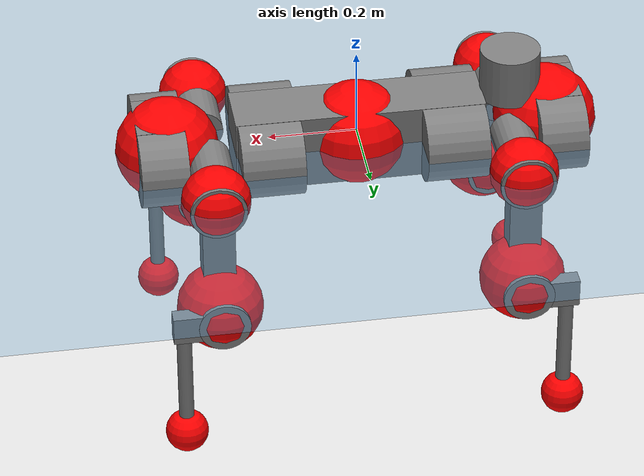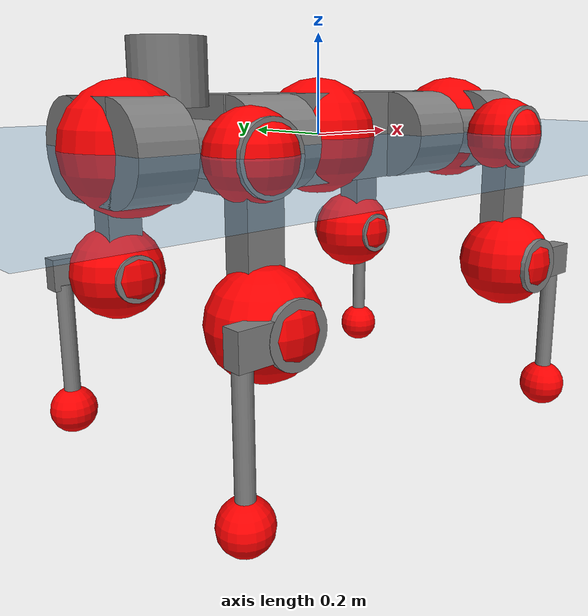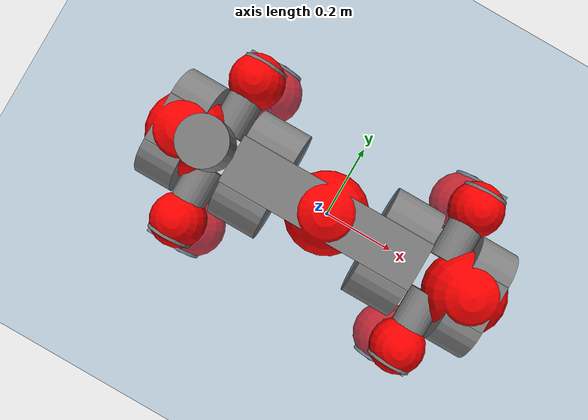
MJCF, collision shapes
<mujoco model="anymal_c">
  <compiler angle="radian" assetdir="assets" balanceinertia="true" inertiafromgeom="false"/>

  <option timestep="0.005" density="1.2" viscosity="2e-05"/>

  <size nkey="1"/>

  <visual>
    <quality shadowsize="8192"/>
    <map shadowclip="0.5"/>
  </visual>

  <default>
    <default class="/">
      <material specular="0" shininess="0.25"/>
      <geom contype="0" conaffinity="0" group="1" solref="-1000 -80"/>
      <site size="0.01 0.005 0.005" group="5"/>
      <general forcelimited="true" forcerange="-80 80" biastype="affine" gainprm="80" biasprm="0 -80 -2"/>
      <default class="anymal_c">
        <joint armature="0.01" damping="0.01" frictionloss="0.1"/>
        <default class="visual">
          <geom type="mesh" group="2"/>
          <default class="visual_zflip"/>
        </default>
        <default class="collision">
          <geom type="cylinder" group="3"/>
          <default class="foot">
            <geom size="0.03 0 0" type="sphere" condim="6" priority="1" friction="0.8 0.02 0.01" solimp="0.015 1 0.03"/>
          </default>
        </default>
      </default>
      <default class="reward_collision_sphere">
        <geom group="5" rgba="1 0 0 1"/>
      </default>
    </default>
  </default>

  <asset>
    <texture type="skybox" colorspace="auto" name="//unnamed_texture_0" builtin="gradient" rgb1="0.95 0.95 0.95" rgb2="0.95 0.95 0.95" width="100" height="600"/>
    <texture type="2d" colorspace="auto" name="texplane" builtin="checker" rgb1="0.345 0.575 0.748" rgb2="0.345 0.575 0.748" markrgb="1 1 1" width="512" height="512"/>
    <texture type="2d" colorspace="linear" name="base" file="base.png"/>
    <texture type="2d" colorspace="linear" name="top_shell" file="top_shell.png"/>
    <texture type="2d" colorspace="linear" name="bottom_shell" file="bottom_shell.png"/>
    <texture type="2d" colorspace="linear" name="remote" file="remote.png"/>
    <texture type="2d" colorspace="linear" name="hatch" file="hatch.png"/>
    <texture type="2d" colorspace="linear" name="handle" file="handle.png"/>
    <texture type="2d" colorspace="linear" name="face" file="face.png"/>
    <texture type="2d" colorspace="linear" name="battery" file="battery.png"/>
    <texture type="2d" colorspace="linear" name="lidar_cage" file="lidar_cage.png"/>
    <texture type="2d" colorspace="linear" name="depth_camera" file="depth_camera.png"/>
    <texture type="2d" colorspace="linear" name="wide_angle_camera" file="wide_angle_camera.png"/>
    <texture type="2d" colorspace="linear" name="lidar" file="lidar.png"/>
    <texture type="2d" colorspace="linear" name="drive" file="drive.png"/>
    <texture type="2d" colorspace="linear" name="hip_l" file="hip_l.png"/>
    <texture type="2d" colorspace="linear" name="shank_l" file="shank_l.png"/>
    <texture type="2d" colorspace="linear" name="foot" file="foot.png"/>
    <texture type="2d" colorspace="linear" name="thigh" file="thigh.png"/>
    <texture type="2d" colorspace="linear" name="shank_r" file="shank_r.png"/>
    <texture type="2d" colorspace="linear" name="hip_r" file="hip_r.png"/>
    <material name="MatPlane" class="/" texture="texplane" texuniform="true" texrepeat="2 2" specular="0.9" shininess="0.5"/>
    <material name="black_plastic" class="/" rgba="0.007 0.007 0.007 1"/>
    <material name="green" class="/" rgba="0.052 0.178 0.033 1"/>
    <material name="red" class="/" rgba="0.178 0.006 0.005 1"/>
    <material name="yellow" class="/" rgba="0.178 0.119 0.006 1"/>
    <material name="lwl" class="/" rgba="0.8 0.8 0.8 1"/>
    <material name="base" class="/" texture="base"/>
    <material name="top_shell" class="/" texture="top_shell"/>
    <material name="bottom_shell" class="/" texture="bottom_shell"/>
    <material name="hip_l" class="/" texture="hip_l"/>
    <material name="thigh" class="/" texture="thigh"/>
    <material name="shank_l" class="/" texture="shank_l"/>
    <material name="foot" class="/" texture="foot"/>
    <material name="hip_r" class="/" texture="hip_r"/>
    <material name="shank" class="/" texture="shank_r"/>
    <material name="hatch" class="/" texture="hatch"/>
    <material name="remote" class="/" texture="remote"/>
    <material name="handle" class="/" texture="handle"/>
    <material name="face" class="/" texture="face"/>
    <material name="depth_camera" class="/" texture="depth_camera"/>
    <material name="wide_angle_camera" class="/" texture="wide_angle_camera"/>
    <material name="battery" class="/" texture="battery"/>
    <material name="lidar_cage" class="/" texture="lidar_cage"/>
    <material name="lidar" class="/" texture="lidar"/>
    <material name="drive" class="/" texture="drive"/>
    <mesh name="base_0" class="/" file="base_0.obj"/>
    <mesh name="base_1" class="/" file="base_1.obj"/>
    <mesh name="base_2" class="/" file="base_2.obj"/>
    <mesh name="base_3" class="/" file="base_3.obj"/>
    <mesh name="base_4" class="/" file="base_4.obj"/>
    <mesh name="base_5" class="/" file="base_5.obj"/>
    <mesh name="top_shell" class="/" file="top_shell.obj"/>
    <mesh name="bottom_shell" class="/" file="bottom_shell.obj"/>
    <mesh name="remote" class="/" file="remote.obj"/>
    <mesh name="handle" class="/" file="handle.obj"/>
    <mesh name="face" class="/" file="face.obj"/>
    <mesh name="wide_angle_camera" class="/" file="wide_angle_camera.obj"/>
    <mesh name="depth_camera" class="/" file="depth_camera.obj"/>
    <mesh name="battery" class="/" file="battery.obj"/>
    <mesh name="lidar_cage" class="/" file="lidar_cage.obj"/>
    <mesh name="lidar" class="/" file="lidar.obj"/>
    <mesh name="drive" class="/" file="drive.obj"/>
    <mesh name="hip_l" class="/" file="hip_l.obj"/>
    <mesh name="thigh" class="/" file="thigh.obj"/>
    <mesh name="shank_l" class="/" file="shank_l.obj"/>
    <mesh name="foot" class="/" file="foot.obj"/>
    <mesh name="hip_r" class="/" file="hip_r.obj"/>
    <mesh name="hatch" class="/" file="hatch.obj"/>
    <mesh name="shank_r" class="/" file="shank_r.obj"/>
  </asset>

  <worldbody>
    <geom name="floor" class="/" size="100 100 0.125" type="plane" group="0" material="MatPlane"/>
    <light name="toplight_shadow" class="/" pos="0 0 5" dir="0.0990148 0.0990148 -0.990148" type="directional" ambient="0.04 0.04 0.04" diffuse="0.55 0.55 0.55" specular="0.12 0.12 0.12"/>
    <light name="toplight_fill" class="/" pos="0 0 5" dir="0.0990148 0.0990148 -0.990148" type="directional" castshadow="false" ambient="0.04 0.04 0.04" diffuse="0.3 0.3 0.3" specular="0.08 0.08 0.08"/>
    <body name="trunk" childclass="anymal_c" pos="-0.00115904 0.000673482 -0.00277885" quat="1 2.6662e-05 -3.09131e-05 -1.02463e-05">
      <inertial pos="0.00294364 0.00242075 0.0439215" quat="0.501316 0.498803 0.503941 0.495904" mass="18.4664" diaginertia="0.520723 0.720339 0.169905"/>
      <joint name="//unnamed_joint_0" type="free" armature="0" damping="0" frictionloss="0"/>
      <geom name="//unnamed_geom_1" class="visual" material="green" mesh="base_0"/>
      <geom name="//unnamed_geom_2" class="visual" material="yellow" mesh="base_1"/>
      <geom name="//unnamed_geom_3" class="visual" material="red" mesh="base_2"/>
      <geom name="//unnamed_geom_4" class="visual" material="black_plastic" mesh="base_3"/>
      <geom name="//unnamed_geom_5" class="visual" material="lwl" mesh="base_4"/>
      <geom name="//unnamed_geom_6" class="visual" material="base" mesh="base_5"/>
      <geom name="trunk_1" class="collision" size="0.2826 0.0682138 0.0877035" type="box"/>
      <geom name="trunk_2" class="collision" size="0.0877035 0.0706501" pos="0.208028 0.0717367 0" quat="0.707107 0 0.707107 0"/>
      <geom name="trunk_3" class="collision" size="0.0877035 0.0706501" pos="-0.208028 0.0717367 0" quat="0.707107 0 0.707107 0"/>
      <geom name="trunk_4" class="collision" size="0.0877035 0.0706501" pos="0.208028 -0.0717367 0" quat="0.707107 0 0.707107 0"/>
      <geom name="trunk_5" class="collision" size="0.0877035 0.0706501" pos="-0.208028 -0.0717367 0" quat="0.707107 0 0.707107 0"/>
      <geom name="//unnamed_geom_12" class="visual" material="top_shell" mesh="top_shell"/>
      <geom name="//unnamed_geom_13" class="visual" material="bottom_shell" mesh="bottom_shell"/>
      <geom name="//unnamed_geom_14" class="visual" material="remote" mesh="remote"/>
      <geom name="//unnamed_geom_15" class="visual" material="handle" mesh="handle"/>
      <geom name="//unnamed_geom_16" class="visual" pos="0.396448 0 0" quat="1 0 0 0" material="face" mesh="face"/>
      <geom name="trunk_6" class="collision" size="0.0535966 0.0682138 0.0877035" pos="0.449053 0 0" type="box"/>
      <geom name="//unnamed_geom_18" class="collision" size="0.0877035 0.0535966" pos="0.449053 0.0717367 0" quat="0.707107 0 0.707107 0"/>
      <geom name="//unnamed_geom_19" class="collision" size="0.0877035 0.0535966" pos="0.449053 -0.0717367 0" quat="0.707107 0 0.707107 0"/>
      <geom name="//unnamed_geom_20" class="visual" pos="0.441544 0 -0.0274036" quat="0.965926 0 0.258819 0" material="depth_camera" mesh="depth_camera"/>
      <geom name="//unnamed_geom_21" class="visual" pos="0.490659 0 0.0141046" material="wide_angle_camera" mesh="wide_angle_camera"/>
      <geom name="//unnamed_geom_22" class="visual_zflip" pos="-0.396448 0 0" quat="0 0 0 1" material="face" mesh="face"/>
      <geom name="trunk_7" class="collision" size="0.0535966 0.0682138 0.0877035" pos="-0.449053 0 0" quat="0 0 0 1" type="box"/>
      <geom name="//unnamed_geom_24" class="collision" size="0.0877035 0.0535966" pos="-0.449053 -0.0717367 0" quat="0 -0.707107 0 0.707107"/>
      <geom name="//unnamed_geom_25" class="collision" size="0.0877035 0.0535966" pos="-0.449053 0.0717367 0" quat="0 -0.707107 0 0.707107"/>
      <geom name="//unnamed_geom_26" class="visual" pos="-0.441544 0 -0.0274036" quat="0 -0.258819 0 0.965926" material="depth_camera" mesh="depth_camera"/>
      <geom name="//unnamed_geom_27" class="visual_zflip" pos="-0.490659 0 0.0141046" quat="0 0 0 1" material="wide_angle_camera" mesh="wide_angle_camera"/>
      <geom name="//unnamed_geom_28" class="visual" material="battery" mesh="battery"/>
      <geom name="//unnamed_geom_29" class="visual" pos="0 0.0792533 0.027479" quat="0.683013 -0.183013 0.183013 0.683013" material="depth_camera" mesh="depth_camera"/>
      <geom name="//unnamed_geom_30" class="visual" pos="0 -0.0792533 0.027479" quat="0.683013 0.183013 0.183013 -0.683013" material="depth_camera" mesh="depth_camera"/>
      <geom name="//unnamed_geom_31" class="visual" pos="-0.348148 0 0.0692511" quat="1 0 0 0" material="lidar_cage" mesh="lidar_cage"/>
      <geom name="trunk_8" class="collision" size="0.0682138 0.058469" pos="-0.348148 0 0.125783"/>
      <geom name="//unnamed_geom_33" class="visual" pos="-0.348148 2.68567e-05 0.13398" quat="0.707107 0 0 -0.707107" material="lidar" mesh="lidar"/>
      <geom name="//unnamed_geom_34" class="visual" pos="0.286839 0.106551 1.42517e-09" quat="0.258819 0.965926 0 0" material="drive" mesh="drive"/>
      <geom name="//unnamed_geom_35" class="visual" pos="0.286839 -0.106551 -1.42517e-09" quat="0.258819 -0.965926 0 0" material="drive" mesh="drive"/>
      <geom name="//unnamed_geom_36" class="visual" pos="-0.286839 0.106551 -1.42517e-09" quat="0 0 0.965926 -0.258819" material="drive" mesh="drive"/>
      <geom name="//unnamed_geom_37" class="visual" pos="-0.286839 -0.106551 1.42517e-09" quat="0 0 -0.965926 -0.258819" material="drive" mesh="drive"/>
      <geom name="//unnamed_geom_38" class="visual" pos="0.110948 0 0.06878" quat="1 0 0 0" material="hatch" mesh="hatch"/>
      <geom name="//unnamed_geom_39" class="reward_collision_sphere" size="0.116938"/>
      <geom name="//unnamed_geom_40" class="reward_collision_sphere" size="0.116938" pos="0.430402 0 0"/>
      <geom name="//unnamed_geom_41" class="reward_collision_sphere" size="0.116938" pos="-0.430402 0 0"/>
      <site name="imu" pos="0.240397 0.0217438 0.0447349" size="0.00974483"/>
      <camera name="track" pos="0 -2.04962 0" quat="0.707107 0.707107 0 0" mode="trackcom"/>
      <camera name="ego_camera" pos="0.430402 0 -0.0376877" quat="-0.5 -0.5 0.5 0.5"/>
      <body name="LF_HIP" pos="0.287037 0.105037 0.00179733" quat="0.257809 0.966195 0.000955001 0.000309959">
        <inertial pos="0.0561359 -0.0172189 -0.00810601" quat="-0.127561 0.709313 -0.135825 0.679819" mass="2.53439" diaginertia="0.00470983 0.0058649 0.00244874"/>
        <joint name="LF_HAA" pos="0 0 0" axis="0.999992 0.00396207 0.00109605" range="-0.735057 0.483788" armature="0.00973235" damping="0.0244609" frictionloss="0.0998135"/>
        <geom name="//unnamed_geom_42" class="visual" pos="0 8.38361e-05 -1.377e-05" quat="0.258819 -0.965926 0 0" material="hip_l" mesh="hip_l"/>
        <geom name="//unnamed_geom_43" class="visual" pos="0.0572913 -0.0702914 -0.0399716" quat="0.183013 -0.683013 0.683013 0.183013" material="drive" mesh="drive"/>
        <geom name="//unnamed_geom_44" class="collision" size="0.0487242 0.0682138" pos="0.0572913 -0.0122565 -0.00650583" quat="-0.353553 -0.612372 0.612372 -0.353553"/>
        <body name="LF_THIGH" pos="0.0604045 -0.0757462 -0.0363916" quat="0.183198 -0.683273 0.682684 0.183084">
          <inertial pos="0.0314962 -0.0022052 -0.231551" quat="0.99321 -0.00428907 -0.0804483 0.0839306" mass="2.80554" diaginertia="0.0244871 0.0327796 0.0029814"/>
          <joint name="LF_HFE" pos="0 0 0" axis="0.999953 -0.00922458 -0.00310006" stiffness="0.00749035" range="-3.09245 3.12814" armature="0.00844648" damping="0.00559344" frictionloss="0.0847386"/>
          <geom name="//unnamed_geom_45" class="visual" pos="-0.00136009 -2.14318e-06 0" quat="0.707107 0 0 -0.707107" material="thigh" mesh="thigh"/>
          <geom name="//unnamed_geom_46" class="collision" size="0.0633414 0.0389793" pos="0.038258 0 0" quat="0.5 0.5 -0.5 -0.5"/>
          <geom name="//unnamed_geom_47" class="collision" size="0.0365431 0.0292345 0.137708" pos="0.0286935 0 -0.133145" quat="0.707107 0 0 -0.707107" type="box"/>
          <geom name="//unnamed_geom_48" class="visual" pos="0.0959319 0 -0.268525" quat="1 0 0 0" material="drive" mesh="drive"/>
          <geom name="//unnamed_geom_49" class="collision" size="0.0487242 0.0682138" pos="0.0289804 0 -0.268525" quat="0.707107 0 0.707107 0"/>
          <geom name="//unnamed_geom_50" class="reward_collision_sphere" size="0.0779587" pos="0.0239112 0 0"/>
          <body name="LF_SHANK" pos="0.0965742 -0.000219212 -0.268421" quat="0.999999 -0.000229663 -0.00102375 -0.000635952">
            <inertial pos="0.00411829 -0.0626729 -0.073891" quat="0.992776 -0.114985 -0.0133136 -0.0315816" mass="0.54313" diaginertia="0.00774025 0.0105463 0.000840455"/>
            <joint name="LF_KFE" pos="0 0 0" axis="0.999914 0.00160099 0.0130056" stiffness="0.00820671" range="-3.14092 3.12238" armature="0.0109573" damping="0.00172389" frictionloss="0.110539"/>
            <geom name="//unnamed_geom_51" class="visual" pos="-0.000443495 -0.00236474 0" quat="0.707107 0 0 -0.707107" material="shank_l" mesh="shank_l"/>
            <geom name="LF_kfe_act" class="collision" size="0.058469 0.0194897" pos="0.019129 0 0" quat="0.5 0.5 -0.5 -0.5"/>
            <geom name="//unnamed_geom_53" class="collision" size="0.0560318 0.0328888 0.0185152" pos="0.019129 -0.0589255 0" quat="0.5 0.5 -0.5 -0.5" type="box"/>
            <geom name="//unnamed_geom_54" class="visual" pos="0.0124818 -0.090894 -0.318432" quat="0.382683 0 0 -0.92388" material="foot" mesh="foot"/>
            <geom name="LF_calf" class="collision" size="0.0170535 0.137648" pos="0.0124817 -0.090132 -0.159216" quat="0.707107 0 0 -0.707107"/>
            <geom name="LF_foot" class="foot" size="0.0247914" pos="0.0124817 -0.090132 -0.297233" quat="0.707107 0 0 -0.707107"/>
            <geom name="//unnamed_geom_57" class="reward_collision_sphere" size="0.0974483" pos="-0.0478225 0 0"/>
            <geom name="//unnamed_geom_58" class="reward_collision_sphere" size="0.0487242" pos="0.0124817 -0.090132 -0.297233"/>
            <site name="LF_foot" class="foot" pos="0.0124817 -0.090132 -0.297233" quat="0.707107 0 0 -0.707107" size="0.00974483"/>
          </body>
        </body>
      </body>
      <body name="RF_HIP" pos="0.288255 -0.105673 0.000230092" quat="0.258923 -0.965898 -0.000453563 0.000651344">
        <inertial pos="0.0570516 0.0153909 -0.00830355" quat="0.135775 0.676979 0.132232 0.711182" mass="2.57652" diaginertia="0.0044447 0.00538744 0.00229752"/>
        <joint name="RF_HAA" pos="0 0 0" axis="0.999929 -0.0117926 -0.00160997" range="-0.442752 0.723212" armature="0.0107988" damping="0.0074118" frictionloss="0.0933046"/>
        <geom name="//unnamed_geom_59" class="visual" pos="0 -8.38355e-05 -1.377e-05" quat="0.258819 0.965926 0 0" material="hip_r" mesh="hip_r"/>
        <geom name="//unnamed_geom_60" class="visual" pos="0.0572913 0.0702914 -0.0399716" quat="0.183013 0.683013 0.683013 -0.183013" material="drive" mesh="drive"/>
        <geom name="//unnamed_geom_61" class="collision" size="0.0487242 0.0682138" pos="0.0572913 0.0122565 -0.00650583" quat="-0.353553 0.612372 0.612372 0.353553"/>
        <body name="RF_THIGH" pos="0.0578025 0.075394 -0.0396035" quat="0.183278 0.683455 0.682647 -0.182459">
          <inertial pos="0.03219 -0.00156311 -0.230867" quat="0.992913 0.00163264 -0.0733158 0.0935225" mass="2.82449" diaginertia="0.0234783 0.0315899 0.00303683"/>
          <joint name="RF_HFE" pos="0 0 0" axis="0.999919 0.00412715 -0.0120191" range="-3.15298 3.16442" armature="0.00979385" damping="0.00467512" frictionloss="0.111071"/>
          <geom name="//unnamed_geom_62" class="visual" pos="-0.00136009 -2.14318e-06 0" quat="0.707107 0 0 -0.707107" material="thigh" mesh="thigh"/>
          <geom name="//unnamed_geom_63" class="collision" size="0.0633414 0.0389793" pos="0.038258 0 0" quat="0.5 0.5 0.5 0.5"/>
          <geom name="//unnamed_geom_64" class="collision" size="0.0365431 0.0292345 0.137708" pos="0.0286935 0 -0.133145" quat="0.707107 0 0 0.707107" type="box"/>
          <geom name="//unnamed_geom_65" class="visual" pos="0.0959319 0 -0.268525" quat="1 0 0 0" material="drive" mesh="drive"/>
          <geom name="//unnamed_geom_66" class="collision" size="0.0487242 0.0682138" pos="0.0289804 0 -0.268525" quat="0.707107 0 0.707107 0"/>
          <geom name="//unnamed_geom_67" class="reward_collision_sphere" size="0.0779587" pos="0.0239112 0 0"/>
          <body name="RF_SHANK" pos="0.0933553 -0.00117712 -0.271315" quat="1 6.26277e-05 -8.2594e-05 3.85632e-05">
            <inertial pos="0.00538028 0.0620035 -0.0764536" quat="0.992932 0.115533 -0.00134613 0.0271493" mass="0.549319" diaginertia="0.00808985 0.0104163 0.000809579"/>
            <joint name="RF_KFE" pos="0 0 0" axis="0.999993 0.00326946 0.00194002" range="-3.14019 3.17685" armature="0.0085118" damping="0.0160806" frictionloss="0.0839673"/>
            <geom name="//unnamed_geom_68" class="visual" pos="-0.000443492 0.00236473 0" quat="0.707107 0 0 0.707107" material="shank" mesh="shank_r"/>
            <geom name="RF_kfe_act" class="collision" size="0.058469 0.0194897" pos="0.019129 0 0" quat="0.5 0.5 0.5 0.5"/>
            <geom name="//unnamed_geom_70" class="collision" size="0.0560318 0.0328888 0.0185152" pos="0.019129 0.0589255 0" quat="0.5 0.5 0.5 0.5" type="box"/>
            <geom name="//unnamed_geom_71" class="visual" pos="0.0124816 0.090894 -0.318432" quat="0.382683 0 0 0.92388" material="foot" mesh="foot"/>
            <geom name="RF_calf" class="collision" size="0.0170535 0.137648" pos="0.0124817 0.090132 -0.159216" quat="0.707107 0 0 0.707107"/>
            <geom name="RF_foot" class="foot" size="0.0242824" pos="0.0124817 0.090132 -0.297233" quat="0.707107 0 0 0.707107"/>
            <geom name="//unnamed_geom_74" class="reward_collision_sphere" size="0.0974483" pos="-0.0478225 0 0"/>
            <geom name="//unnamed_geom_75" class="reward_collision_sphere" size="0.0487242" pos="0.0124817 0.090132 -0.297233"/>
            <site name="RF_foot" class="foot" pos="0.0124817 0.090132 -0.297233" quat="0.707107 0 0 0.707107" size="0.00974483"/>
          </body>
        </body>
      </body>
      <body name="LH_HIP" pos="-0.286015 0.106815 -0.00122139" quat="0.000672468 0.00033151 0.965978 -0.258621">
        <inertial pos="0.0570737 0.0151115 -0.00958802" quat="0.137091 0.680675 0.121251 0.709356" mass="2.61424" diaginertia="0.00475795 0.00573666 0.00249541"/>
        <joint name="LH_HAA" pos="0 0 0" axis="0.99999 0.00299365 -0.00341892" stiffness="0.00731268" range="-0.506705 0.673481" armature="0.00924866" damping="0" frictionloss="0.0993316"/>
        <geom name="//unnamed_geom_76" class="visual" pos="0 -8.38355e-05 -1.377e-05" quat="-0.258819 -0.965926 0 0" material="hip_r" mesh="hip_r"/>
        <geom name="//unnamed_geom_77" class="visual" pos="0.0572913 0.0702914 -0.0399716" quat="0.183013 0.683013 0.683013 -0.183013" material="drive" mesh="drive"/>
        <geom name="//unnamed_geom_78" class="collision" size="0.0487242 0.0682138" pos="0.0572913 0.0122565 -0.00650583" quat="-0.353553 0.612372 0.612372 0.353553"/>
        <body name="LH_THIGH" pos="0.0561492 0.0738516 -0.0394784" quat="0.183361 0.683002 0.682809 -0.183464">
          <inertial pos="0.0293873 -0.00053496 -0.230266" quat="0.9934 -0.0125427 -0.0831606 0.0779977" mass="2.89917" diaginertia="0.0245626 0.0351059 0.00327831"/>
          <joint name="LH_HFE" pos="0 0 0" axis="0.99995 0.00266919 0.00960438" stiffness="0.0047417" range="-3.16002 3.12574" armature="0.0104651" damping="0" frictionloss="0.0962317"/>
          <geom name="//unnamed_geom_79" class="visual" pos="-0.00136009 -2.14318e-06 0" quat="0.707107 0 0 -0.707107" material="thigh" mesh="thigh"/>
          <geom name="//unnamed_geom_80" class="collision" size="0.0633414 0.0389793" pos="0.038258 0 0" quat="0.5 0.5 -0.5 -0.5"/>
          <geom name="//unnamed_geom_81" class="collision" size="0.0365431 0.0292345 0.137708" pos="0.0286935 0 -0.133145" quat="0.707107 0 0 -0.707107" type="box"/>
          <geom name="//unnamed_geom_82" class="visual" pos="0.0959319 0 -0.268525" quat="1 0 0 0" material="drive" mesh="drive"/>
          <geom name="//unnamed_geom_83" class="collision" size="0.0487242 0.0682138" pos="0.0289804 0 -0.268525" quat="0.707107 0 0.707107 0"/>
          <geom name="//unnamed_geom_84" class="reward_collision_sphere" size="0.0779587" pos="0.0239112 0 0"/>
          <body name="LH_SHANK" pos="0.0958364 -0.00228808 -0.268371" quat="1 -0.000396873 -6.26666e-05 -0.000135761">
            <inertial pos="0.00256986 0.0618825 -0.0766962" quat="0.992855 0.118645 -0.00272507 0.0124055" mass="0.561114" diaginertia="0.00811871 0.010662 0.000867786"/>
            <joint name="LH_KFE" pos="0 0 0" axis="0.999999 0.00130844 -0.000120882" stiffness="0.00402434" range="-3.15351 3.19535" armature="0.0109082" damping="0" frictionloss="0.0944845"/>
            <geom name="//unnamed_geom_85" class="visual" pos="-0.000443492 0.00236473 0" quat="-0.707107 0 0 -0.707107" material="shank" mesh="shank_r"/>
            <geom name="LH_kfe_act" class="collision" size="0.058469 0.0194897" pos="0.019129 0 0" quat="0.5 0.5 -0.5 -0.5"/>
            <geom name="//unnamed_geom_87" class="collision" size="0.0560318 0.0328888 0.0185152" pos="0.019129 0.0589255 0" quat="0.5 0.5 -0.5 -0.5" type="box"/>
            <geom name="//unnamed_geom_88" class="visual" pos="0.0124816 0.090894 -0.318432" quat="-0.382683 0 0 -0.92388" material="foot" mesh="foot"/>
            <geom name="LH_calf" class="collision" size="0.0170535 0.137648" pos="0.0124817 0.090132 -0.159216" quat="0.707107 0 0 -0.707107"/>
            <geom name="LH_foot" class="foot" size="0.0288053" pos="0.0124817 0.090132 -0.297233" quat="0.707107 0 0 -0.707107"/>
            <geom name="//unnamed_geom_91" class="reward_collision_sphere" size="0.0974483" pos="-0.0478225 0 0"/>
            <geom name="//unnamed_geom_92" class="reward_collision_sphere" size="0.0487242" pos="0.0124817 0.090132 -0.297233"/>
            <site name="LH_foot" class="foot" pos="0.0124817 0.090132 -0.297233" quat="0.707107 0 0 -0.707107" size="0.00974483"/>
          </body>
        </body>
      </body>
      <body name="RH_HIP" pos="-0.28434 -0.108994 0.000809727" quat="-0.000112839 -0.000107344 -0.965884 -0.258976">
        <inertial pos="0.0535203 -0.0140377 -0.00731997" quat="-0.123035 0.710806 -0.126911 0.680816" mass="2.58133" diaginertia="0.00476326 0.00566269 0.00247048"/>
        <joint name="RH_HAA" pos="0 0 0" axis="0.99999 -0.00232704 0.00380326" stiffness="0.00677474" range="-0.671607 0.510913" armature="0.00828035" damping="0.0098291" frictionloss="0.103497"/>
        <geom name="//unnamed_geom_93" class="visual" pos="0 8.38361e-05 -1.377e-05" quat="-0.258819 0.965926 0 0" material="hip_l" mesh="hip_l"/>
        <geom name="//unnamed_geom_94" class="visual" pos="0.0572913 -0.0702914 -0.0399716" quat="-0.183013 0.683013 -0.683013 -0.183013" material="drive" mesh="drive"/>
        <geom name="//unnamed_geom_95" class="collision" size="0.0487242 0.0682138" pos="0.0572913 -0.0122565 -0.00650583" quat="0.353553 0.612372 -0.612372 0.353553"/>
        <body name="RH_THIGH" pos="0.0551919 -0.0742018 -0.038985" quat="-0.182877 0.683103 -0.682934 -0.183103">
          <inertial pos="0.0296778 8.6074e-05 -0.231084" quat="0.992912 -0.00411234 -0.0824231 0.0855242" mass="2.81186" diaginertia="0.0239148 0.0347013 0.00311919"/>
          <joint name="RH_HFE" pos="0 0 0" axis="0.999971 0.00675655 0.00356495" stiffness="0.010013" range="-3.13827 3.15715" armature="0.00985441" damping="0.00302982" frictionloss="0.103757"/>
          <geom name="//unnamed_geom_96" class="visual" pos="-0.00136009 -2.14318e-06 0" quat="0.707107 0 0 -0.707107" material="thigh" mesh="thigh"/>
          <geom name="//unnamed_geom_97" class="collision" size="0.0633414 0.0389793" pos="0.038258 0 0" quat="0.5 0.5 0.5 0.5"/>
          <geom name="//unnamed_geom_98" class="collision" size="0.0365431 0.0292345 0.137708" pos="0.0286935 0 -0.133145" quat="0.707107 0 0 0.707107" type="box"/>
          <geom name="//unnamed_geom_99" class="visual" pos="0.0959319 0 -0.268525" quat="1 0 0 0" material="drive" mesh="drive"/>
          <geom name="//unnamed_geom_100" class="collision" size="0.0487242 0.0682138" pos="0.0289804 0 -0.268525" quat="0.707107 0 0.707107 0"/>
          <geom name="//unnamed_geom_101" class="reward_collision_sphere" size="0.0779587" pos="0.0239112 0 0"/>
          <body name="RH_SHANK" pos="0.0957839 -0.00044515 -0.264674" quat="1 -0.000164053 -0.000237006 0.000103112">
            <inertial pos="0.00350708 -0.0621731 -0.075077" quat="0.991629 -0.127377 0.00347611 -0.0208575" mass="0.54554" diaginertia="0.00835982 0.0102562 0.000837522"/>
            <joint name="RH_KFE" pos="0 0 0" axis="0.999997 -0.00237419 -3.92686e-05" stiffness="0.0021098" range="-3.16544 3.14325" armature="0.00863098" damping="0.011441" frictionloss="0.0869429"/>
            <geom name="//unnamed_geom_102" class="visual" pos="-0.000443495 -0.00236474 0" quat="0.707107 0 0 -0.707107" material="shank_l" mesh="shank_l"/>
            <geom name="RH_kfe_act" class="collision" size="0.058469 0.0194897" pos="0.019129 0 0" quat="0.5 0.5 0.5 0.5"/>
            <geom name="//unnamed_geom_104" class="collision" size="0.0560318 0.0328888 0.0185152" pos="0.019129 -0.0589255 0" quat="0.5 0.5 0.5 0.5" type="box"/>
            <geom name="//unnamed_geom_105" class="visual" pos="0.0124818 -0.090894 -0.318432" quat="0.382683 0 0 -0.92388" material="foot" mesh="foot"/>
            <geom name="RH_calf" class="collision" size="0.0170535 0.137648" pos="0.0124817 -0.090132 -0.159216" quat="0.707107 0 0 0.707107"/>
            <geom name="RH_foot" class="foot" size="0.0291715" pos="0.0124817 -0.090132 -0.297233" quat="0.707107 0 0 0.707107"/>
            <geom name="//unnamed_geom_108" class="reward_collision_sphere" size="0.0974483" pos="-0.0478225 0 0"/>
            <geom name="//unnamed_geom_109" class="reward_collision_sphere" size="0.0487242" pos="0.0124817 -0.090132 -0.297233"/>
            <site name="RH_foot" class="foot" pos="0.0124817 -0.090132 -0.297233" quat="0.707107 0 0 0.707107" size="0.00974483"/>
          </body>
        </body>
      </body>
    </body>
  </worldbody>

  <contact>
    <pair class="/" geom1="floor" geom2="LF_foot" name="//unnamed_contact_0"/>
    <pair class="/" geom1="floor" geom2="RF_foot" name="//unnamed_contact_1"/>
    <pair class="/" geom1="floor" geom2="LH_foot" name="//unnamed_contact_2"/>
    <pair class="/" geom1="floor" geom2="RH_foot" name="//unnamed_contact_3"/>
  </contact>

  <actuator>
    <general name="LF_HAA" class="/" joint="LF_HAA" forcerange="-79.5646 79.5646" gainprm="83.2563" biasprm="0 -83.2563 -1.99236"/>
    <general name="LF_HFE" class="/" joint="LF_HFE" forcerange="-70.0683 70.0683" gainprm="83.2563" biasprm="0 -83.2563 -1.99236"/>
    <general name="LF_KFE" class="/" joint="LF_KFE" forcerange="-78.7337 78.7337" gainprm="83.2563" biasprm="0 -83.2563 -1.99236"/>
    <general name="RF_HAA" class="/" joint="RF_HAA" forcerange="-80.9409 80.9409" gainprm="83.2563" biasprm="0 -83.2563 -1.99236"/>
    <general name="RF_HFE" class="/" joint="RF_HFE" forcerange="-87.6318 87.6318" gainprm="83.2563" biasprm="0 -83.2563 -1.99236"/>
    <general name="RF_KFE" class="/" joint="RF_KFE" forcerange="-77.5355 77.5355" gainprm="83.2563" biasprm="0 -83.2563 -1.99236"/>
    <general name="LH_HAA" class="/" joint="LH_HAA" forcerange="-76.7935 76.7935" gainprm="83.2563" biasprm="0 -83.2563 -1.99236"/>
    <general name="LH_HFE" class="/" joint="LH_HFE" forcerange="-70.684 70.684" gainprm="83.2563" biasprm="0 -83.2563 -1.99236"/>
    <general name="LH_KFE" class="/" joint="LH_KFE" forcerange="-79.0857 79.0857" gainprm="83.2563" biasprm="0 -83.2563 -1.99236"/>
    <general name="RH_HAA" class="/" joint="RH_HAA" forcerange="-72.1872 72.1872" gainprm="83.2563" biasprm="0 -83.2563 -1.99236"/>
    <general name="RH_HFE" class="/" joint="RH_HFE" forcerange="-77.8455 77.8455" gainprm="83.2563" biasprm="0 -83.2563 -1.99236"/>
    <general name="RH_KFE" class="/" joint="RH_KFE" forcerange="-79.7422 79.7422" gainprm="83.2563" biasprm="0 -83.2563 -1.99236"/>
  </actuator>

  <sensor>
    <gyro site="imu" name="imu_angular_velocity"/>
    <velocimeter site="imu" name="imu_linear_velocity"/>
    <framelinvel objtype="site" objname="LF_foot" name="LF_foot_global_linear_velocity"/>
    <framelinvel objtype="site" objname="RF_foot" name="RF_foot_global_linear_velocity"/>
    <framelinvel objtype="site" objname="LH_foot" name="LH_foot_global_linear_velocity"/>
    <framelinvel objtype="site" objname="RH_foot" name="RH_foot_global_linear_velocity"/>
  </sensor>

  <keyframe>
    <key name="home" qpos="0 0 0.55 1 0 0 0 0 0.4 -0.8 0 -0.4 0.8 0 -0.4 0.8 0 0.4 -0.8"/>
  </keyframe>
</mujoco>
